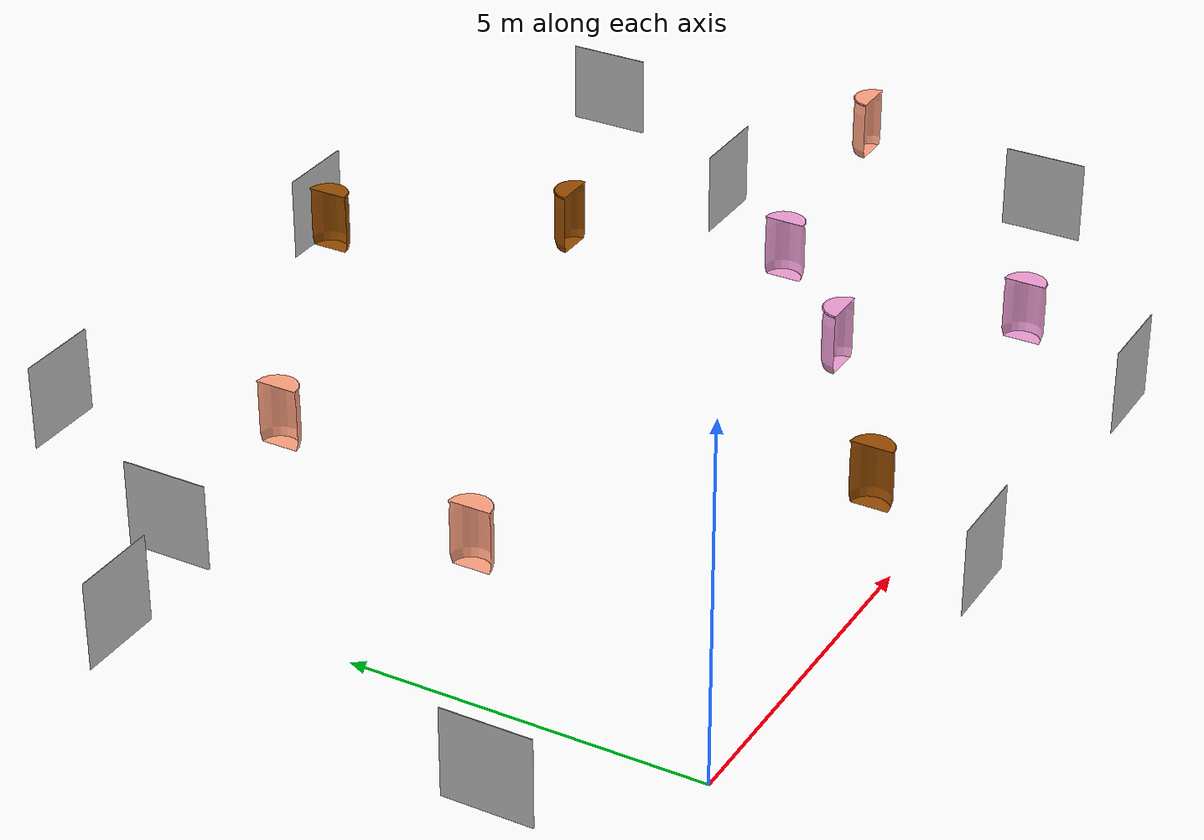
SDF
<sdf version="1.4">
 <world name="default">
  <scene><ambient>0.5 0.5 0.5 1</ambient><background>0.5 0.5 0.5 1</background><shadows>false</shadows></scene>
  <physics type="ode">
   <gravity>0 0 -9.81</gravity>
   <ode>
    <solver><type>quick</type><iters>10</iters><sor>1.3</sor></solver>
    <constraints>
     <cfm>0.0</cfm>
     <erp>0.2</erp>
     <contact_max_correcting_vel>100.0</contact_max_correcting_vel>
     <contact_surface_layer>0.001</contact_surface_layer>
    </constraints>
   </ode>
   <real_time_update_rate>1000</real_time_update_rate>
   <max_step_size>0.001</max_step_size>
  </physics>
  <light type="directional" name="directional_light_1">
   <cast_shadows>false</cast_shadows>
   <pose>0 0 30 0.1 0.1 0</pose>
   <diffuse>1.0 1.0 1.0 1</diffuse>
   <specular>.1 .1 .1 1</specular>
   <attenuation><range>300</range></attenuation>
   <direction>0.1 0.1 -1</direction>
  </light>
  <model name="fiducial_barrel_high_3">
   <static>true</static>
   <link name="fiducial_barrel_high_3_link">
    <pose>1.2 3.6 0 0 0 -4.71239</pose>
    <collision name="fiducial_barrel_high_3_collision">
     <geometry><mesh><uri>file://barrel_high_1.dae</uri><scale>1 1 1</scale></mesh></geometry>
    </collision>
    <visual name="fiducial_barrel_high_3_visual">
     <cast_shadows>false</cast_shadows>
     <geometry><mesh><uri>file://barrel_high_1.dae</uri><scale>1 1 1</scale></mesh></geometry>
    </visual>
   </link>
  </model>
  <model name="fiducial_barrel_high_4">
   <static>true</static>
   <link name="fiducial_barrel_high_4_link">
    <pose>4.8 0 0 0 0 -4.71239</pose>
    <collision name="fiducial_barrel_high_4_collision">
     <geometry><mesh><uri>file://barrel_high_2.dae</uri><scale>1 1 1</scale></mesh></geometry>
    </collision>
    <visual name="fiducial_barrel_high_4_visual">
     <cast_shadows>false</cast_shadows>
     <geometry><mesh><uri>file://barrel_high_2.dae</uri><scale>1 1 1</scale></mesh></geometry>
    </visual>
   </link>
  </model>
  <model name="fiducial_barrel_high_6">
   <static>true</static>
   <link name="fiducial_barrel_high_6_link">
    <pose>9.6 0 0 0 0 -4.71239</pose>
    <collision name="fiducial_barrel_high_6_collision">
     <geometry><mesh><uri>file://barrel_high_3.dae</uri><scale>1 1 1</scale></mesh></geometry>
    </collision>
    <visual name="fiducial_barrel_high_6_visual">
     <cast_shadows>false</cast_shadows>
     <geometry><mesh><uri>file://barrel_high_3.dae</uri><scale>1 1 1</scale></mesh></geometry>
    </visual>
   </link>
  </model>
  <model name="fiducial_barrel_high_7">
   <static>true</static>
   <link name="fiducial_barrel_high_7_link">
    <pose>2.4 7.2 0 0 0 -4.71239</pose>
    <collision name="fiducial_barrel_high_7_collision">
     <geometry><mesh><uri>file://barrel_high_1.dae</uri><scale>1 1 1</scale></mesh></geometry>
    </collision>
    <visual name="fiducial_barrel_high_7_visual">
     <cast_shadows>false</cast_shadows>
     <geometry><mesh><uri>file://barrel_high_1.dae</uri><scale>1 1 1</scale></mesh></geometry>
    </visual>
   </link>
  </model>
  <model name="fiducial_barrel_high_8">
   <static>true</static>
   <link name="fiducial_barrel_high_8_link">
    <pose>8.4 7.2 0 0 0 -3.14159</pose>
    <collision name="fiducial_barrel_high_8_collision">
     <geometry><mesh><uri>file://barrel_high_2.dae</uri><scale>1 1 1</scale></mesh></geometry>
    </collision>
    <visual name="fiducial_barrel_high_8_visual">
     <cast_shadows>false</cast_shadows>
     <geometry><mesh><uri>file://barrel_high_2.dae</uri><scale>1 1 1</scale></mesh></geometry>
    </visual>
   </link>
  </model>
  <model name="fiducial_barrel_high_9">
   <static>true</static>
   <link name="fiducial_barrel_high_9_link">
    <pose>9.6 3.6 0 0 0 -4.71239</pose>
    <collision name="fiducial_barrel_high_9_collision">
     <geometry><mesh><uri>file://barrel_high_3.dae</uri><scale>1 1 1</scale></mesh></geometry>
    </collision>
    <visual name="fiducial_barrel_high_9_visual">
     <cast_shadows>false</cast_shadows>
     <geometry><mesh><uri>file://barrel_high_3.dae</uri><scale>1 1 1</scale></mesh></geometry>
    </visual>
   </link>
  </model>
  <model name="fiducial_barrel_high_10">
   <static>true</static>
   <link name="fiducial_barrel_high_10_link">
    <pose>13.2 4.8 0 0 0 -3.14159</pose>
    <collision name="fiducial_barrel_high_10_collision">
     <geometry><mesh><uri>file://barrel_high_1.dae</uri><scale>1 1 1</scale></mesh></geometry>
    </collision>
    <visual name="fiducial_barrel_high_10_visual">
     <cast_shadows>false</cast_shadows>
     <geometry><mesh><uri>file://barrel_high_1.dae</uri><scale>1 1 1</scale></mesh></geometry>
    </visual>
   </link>
  </model>
  <model name="fiducial_barrel_high_12">
   <static>true</static>
   <link name="fiducial_barrel_high_12_link">
    <pose>7.2 9.6 0 0 0 -4.71239</pose>
    <collision name="fiducial_barrel_high_12_collision">
     <geometry><mesh><uri>file://barrel_high_2.dae</uri><scale>1 1 1</scale></mesh></geometry>
    </collision>
    <visual name="fiducial_barrel_high_12_visual">
     <cast_shadows>false</cast_shadows>
     <geometry><mesh><uri>file://barrel_high_2.dae</uri><scale>1 1 1</scale></mesh></geometry>
    </visual>
   </link>
  </model>
  <model name="fiducial_barrel_high_13">
   <static>true</static>
   <link name="fiducial_barrel_high_13_link">
    <pose>7.2 2.4 0 0 0 -3.14159</pose>
    <collision name="fiducial_barrel_high_13_collision">
     <geometry><mesh><uri>file://barrel_high_3.dae</uri><scale>1 1 1</scale></mesh></geometry>
    </collision>
    <visual name="fiducial_barrel_high_13_visual">
     <cast_shadows>false</cast_shadows>
     <geometry><mesh><uri>file://barrel_high_3.dae</uri><scale>1 1 1</scale></mesh></geometry>
    </visual>
   </link>
  </model>
  <model name="small_wall_qr_3">
   <static>true</static>
   <link name="small_wall_qr_3_link">
    <pose>-3.6 1.2 1.2 0 0 -1.5708</pose>
    <collision name="small_wall_qr_3_collision">
     <geometry><mesh><uri>file://small_wall_qr0.dae</uri><scale>1 1 1</scale></mesh></geometry>
    </collision>
    <visual name="small_wall_qr_3_visual">
     <cast_shadows>false</cast_shadows>
     <geometry><mesh><uri>file://small_wall_qr0.dae</uri><scale>1 1 1</scale></mesh></geometry>
    </visual>
   </link>
  </model>
  <model name="small_wall_qr_4">
   <static>true</static>
   <link name="small_wall_qr_4_link">
    <pose>3.6 -1.2 1.2 0 0 -3.14159</pose>
    <collision name="small_wall_qr_4_collision">
     <geometry><mesh><uri>file://small_wall_qr1.dae</uri><scale>1 1 1</scale></mesh></geometry>
    </collision>
    <visual name="small_wall_qr_4_visual">
     <cast_shadows>false</cast_shadows>
     <geometry><mesh><uri>file://small_wall_qr1.dae</uri><scale>1 1 1</scale></mesh></geometry>
    </visual>
   </link>
  </model>
  <model name="small_wall_qr_6">
   <static>true</static>
   <link name="small_wall_qr_6_link">
    <pose>8.4 -2.4 1.2 0 0 0</pose>
    <collision name="small_wall_qr_6_collision">
     <geometry><mesh><uri>file://small_wall_qr2.dae</uri><scale>1 1 1</scale></mesh></geometry>
    </collision>
    <visual name="small_wall_qr_6_visual">
     <cast_shadows>false</cast_shadows>
     <geometry><mesh><uri>file://small_wall_qr2.dae</uri><scale>1 1 1</scale></mesh></geometry>
    </visual>
   </link>
  </model>
  <model name="small_wall_qr_7">
   <static>true</static>
   <link name="small_wall_qr_7_link">
    <pose>12 1.2 1.2 0 0 -1.5708</pose>
    <collision name="small_wall_qr_7_collision">
     <geometry><mesh><uri>file://small_wall_qr3.dae</uri><scale>1 1 1</scale></mesh></geometry>
    </collision>
    <visual name="small_wall_qr_7_visual">
     <cast_shadows>false</cast_shadows>
     <geometry><mesh><uri>file://small_wall_qr3.dae</uri><scale>1 1 1</scale></mesh></geometry>
    </visual>
   </link>
  </model>
  <model name="small_wall_qr_8">
   <static>true</static>
   <link name="small_wall_qr_8_link">
    <pose>12 8.4 1.2 0 0 -1.5708</pose>
    <collision name="small_wall_qr_8_collision">
     <geometry><mesh><uri>file://small_wall_qr4.dae</uri><scale>1 1 1</scale></mesh></geometry>
    </collision>
    <visual name="small_wall_qr_8_visual">
     <cast_shadows>false</cast_shadows>
     <geometry><mesh><uri>file://small_wall_qr4.dae</uri><scale>1 1 1</scale></mesh></geometry>
    </visual>
   </link>
  </model>
  <model name="small_wall_qr_9">
   <static>true</static>
   <link name="small_wall_qr_9_link">
    <pose>7.2 10.8 1.2 0 0 -3.14159</pose>
    <collision name="small_wall_qr_9_collision">
     <geometry><mesh><uri>file://small_wall_qr5.dae</uri><scale>1 1 1</scale></mesh></geometry>
    </collision>
    <visual name="small_wall_qr_9_visual">
     <cast_shadows>false</cast_shadows>
     <geometry><mesh><uri>file://small_wall_qr5.dae</uri><scale>1 1 1</scale></mesh></geometry>
    </visual>
   </link>
  </model>
  <model name="small_wall_qr_10">
   <static>true</static>
   <link name="small_wall_qr_10_link">
    <pose>1.2 10.8 1.2 0 0 -3.14159</pose>
    <collision name="small_wall_qr_10_collision">
     <geometry><mesh><uri>file://small_wall_qr6.dae</uri><scale>1 1 1</scale></mesh></geometry>
    </collision>
    <visual name="small_wall_qr_10_visual">
     <cast_shadows>false</cast_shadows>
     <geometry><mesh><uri>file://small_wall_qr6.dae</uri><scale>1 1 1</scale></mesh></geometry>
    </visual>
   </link>
  </model>
  <model name="small_wall_qr_11">
   <static>true</static>
   <link name="small_wall_qr_11_link">
    <pose>-1.2 7.2 1.2 0 0 -1.5708</pose>
    <collision name="small_wall_qr_11_collision">
     <geometry><mesh><uri>file://small_wall_qr7.dae</uri><scale>1 1 1</scale></mesh></geometry>
    </collision>
    <visual name="small_wall_qr_11_visual">
     <cast_shadows>false</cast_shadows>
     <geometry><mesh><uri>file://small_wall_qr7.dae</uri><scale>1 1 1</scale></mesh></geometry>
    </visual>
   </link>
  </model>
  <model name="small_wall_qr_12">
   <static>true</static>
   <link name="small_wall_qr_12_link">
    <pose>-2.4 7.2 1.2 0 0 -3.14159</pose>
    <collision name="small_wall_qr_12_collision">
     <geometry><mesh><uri>file://small_wall_qr8.dae</uri><scale>1 1 1</scale></mesh></geometry>
    </collision>
    <visual name="small_wall_qr_12_visual">
     <cast_shadows>false</cast_shadows>
     <geometry><mesh><uri>file://small_wall_qr8.dae</uri><scale>1 1 1</scale></mesh></geometry>
    </visual>
   </link>
  </model>
  <model name="small_wall_qr_13">
   <static>true</static>
   <link name="small_wall_qr_13_link">
    <pose>10.8 6 1.2 0 0 -3.14159</pose>
    <collision name="small_wall_qr_13_collision">
     <geometry><mesh><uri>file://small_wall_qr9.dae</uri><scale>1 1 1</scale></mesh></geometry>
    </collision>
    <visual name="small_wall_qr_13_visual">
     <cast_shadows>false</cast_shadows>
     <geometry><mesh><uri>file://small_wall_qr9.dae</uri><scale>1 1 1</scale></mesh></geometry>
    </visual>
   </link>
  </model>
 </world>
</sdf>
